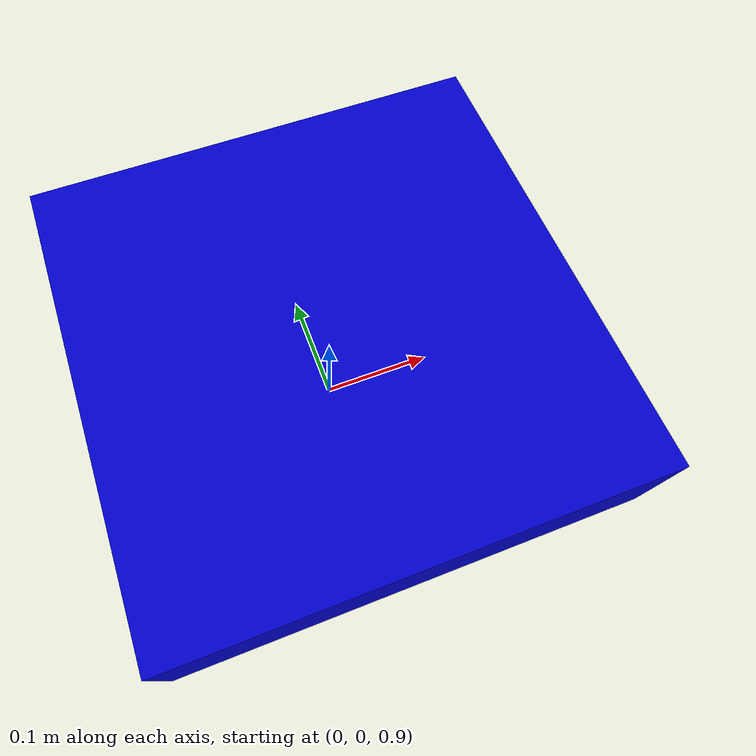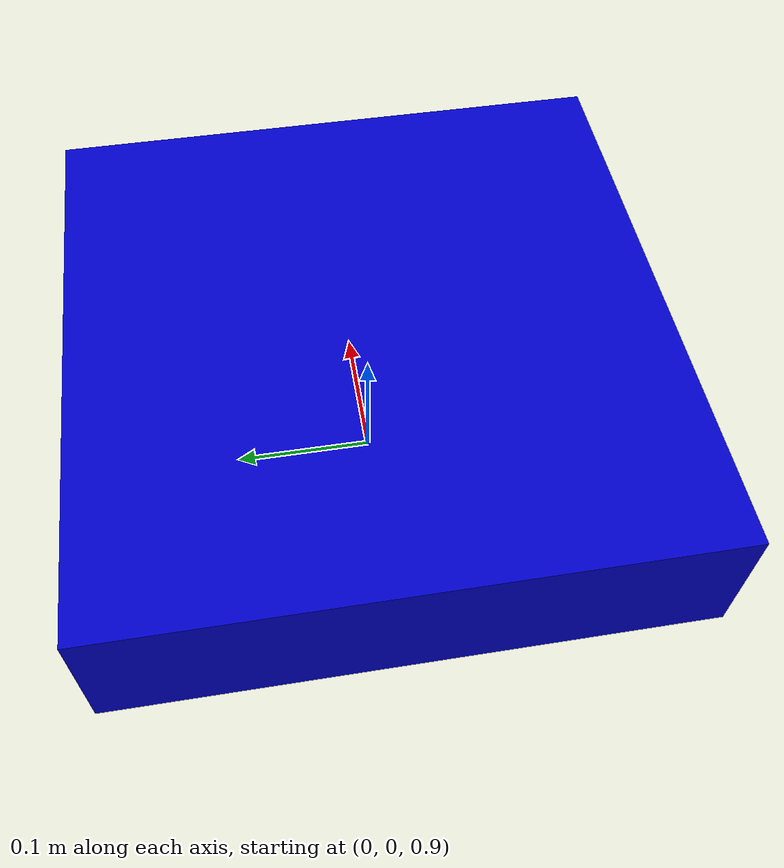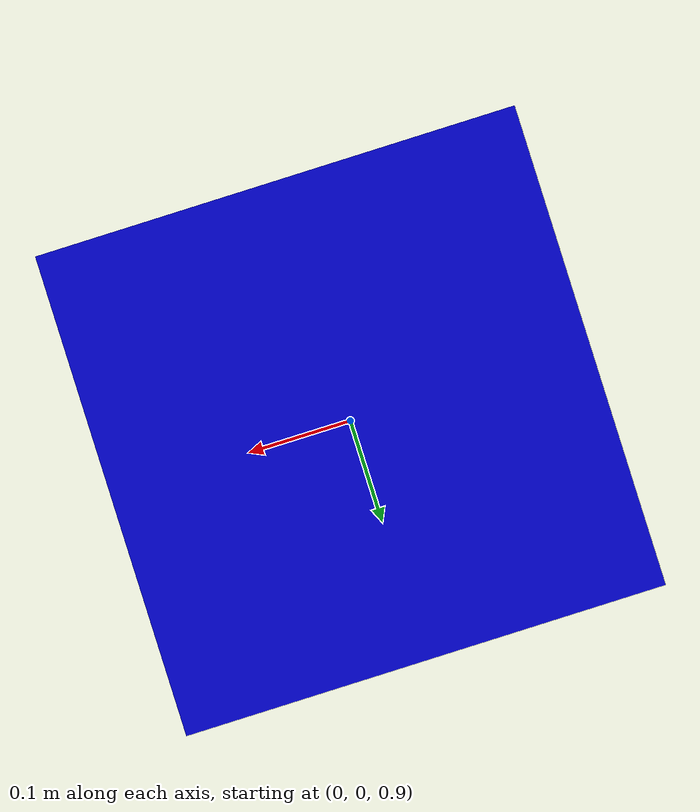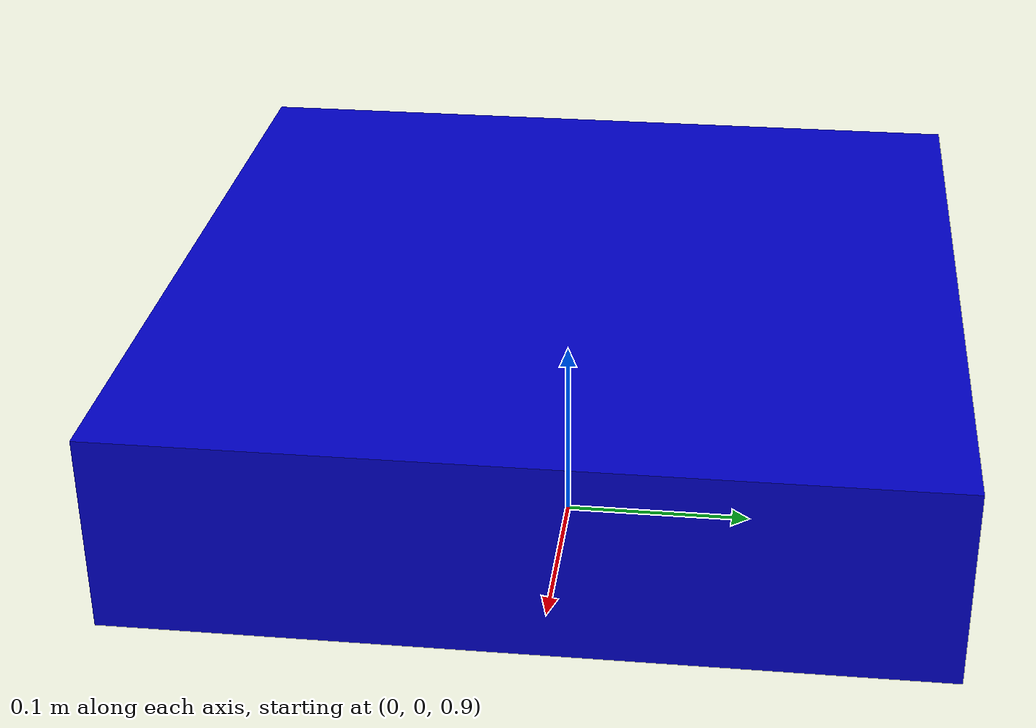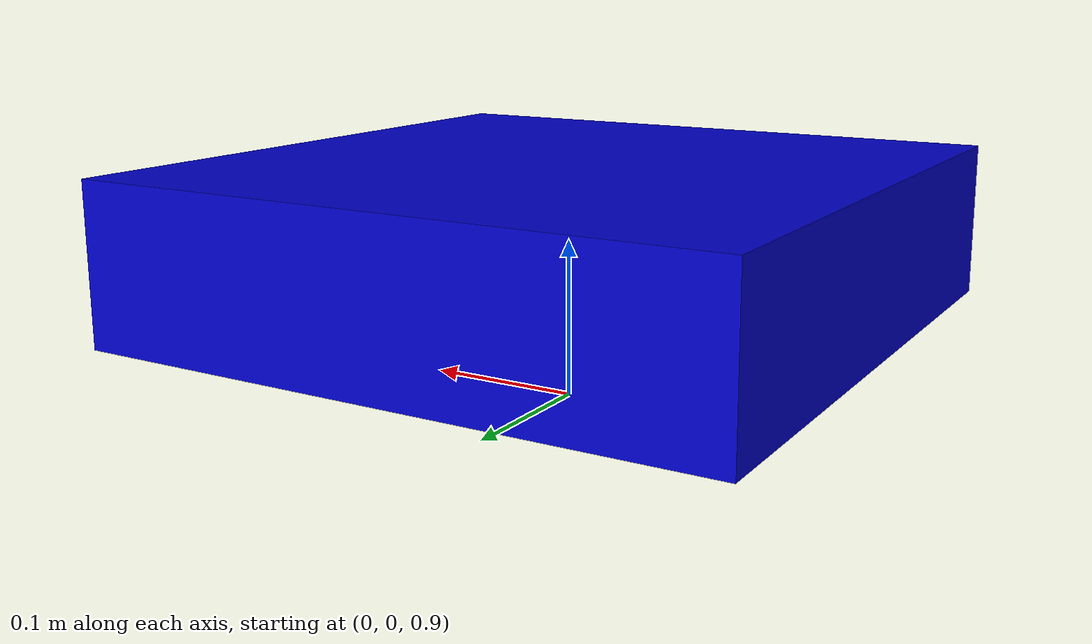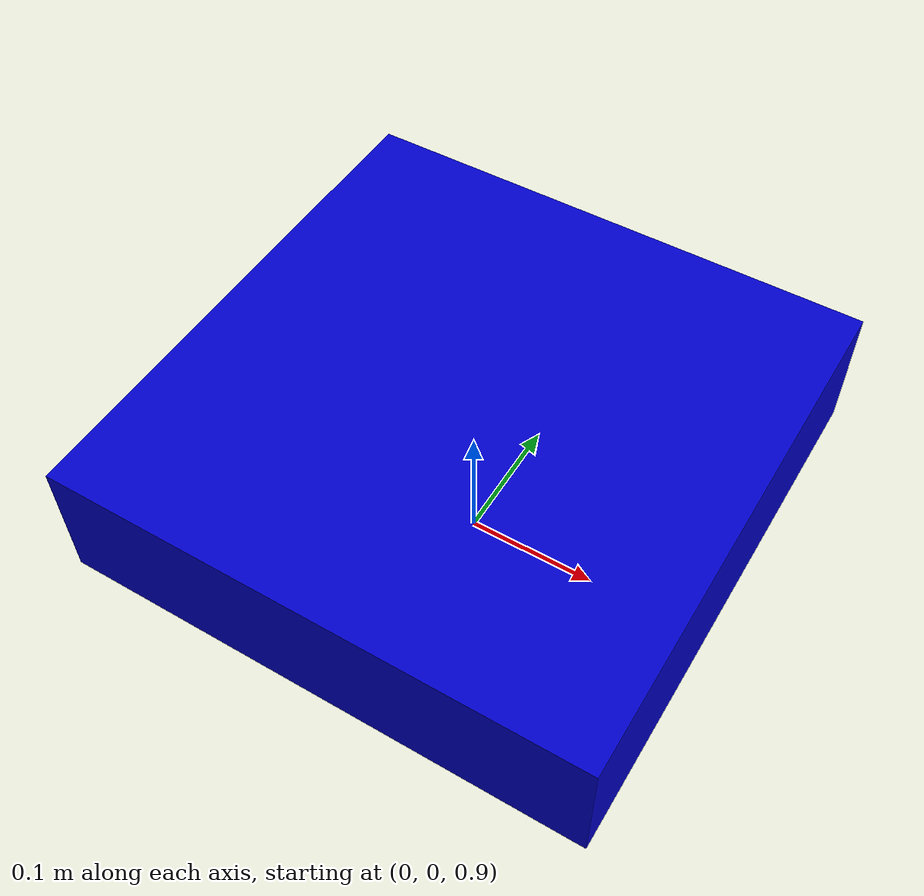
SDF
<?xml version="1.0" ?>
<sdf version="1.8">
  <world name="dve_wind_arena">
    <physics name="1ms" type="ignored">
      <max_step_size>0.001</max_step_size>
      <real_time_factor>1.0</real_time_factor>
    </physics>

    <plugin filename="gz-sim-physics-system" name="gz::sim::systems::Physics" />
    <plugin filename="gz-sim-user-commands-system" name="gz::sim::systems::UserCommands" />
    <plugin filename="gz-sim-scene-broadcaster-system" name="gz::sim::systems::SceneBroadcaster" />
    <plugin filename="gz-sim-imu-system" name="gz::sim::systems::Imu" />

    <!-- Sistemul global de vânt -->
    <plugin filename="gz-sim-wind-effects-system" name="gz::sim::systems::WindEffects">
      <force_approximation_threshold>0.001</force_approximation_threshold>
      <default_wind><linear>4.5 2.0 0.0</linear></default_wind>
    </plugin>

    <light type="directional" name="sun">
      <cast_shadows>true</cast_shadows>
      <pose>0 0 10 0 0 0</pose>
      <diffuse>0.8 0.8 0.8 1</diffuse>
      <specular>0.2 0.2 0.2 1</specular>
    </light>

    <model name="ground_plane">
      <static>true</static>
      <link name="link">
        <collision name="collision">
          <geometry><plane><normal>0 0 1</normal><size>100 100</size></plane></geometry>
        </collision>
        <visual name="visual">
          <geometry><plane><normal>0 0 1</normal><size>100 100</size></plane></geometry>
          <material><ambient>0.2 0.2 0.2 1</ambient><diffuse>0.2 0.2 0.2 1</diffuse></material>
        </visual>
      </link>
    </model>

    <model name="pinn_drone">
      <pose>0 0 1.0 0 0 0</pose>

      <plugin filename="gz-sim-lift-drag-system" name="gz::sim::systems::LiftDrag">
        <a0>0.05</a0><cla>4.75</cla><cda>0.5</cda><alpha_stall>0.33</alpha_stall>
        <cla_stall>-1.5</cla_stall><cda_stall>1.0</cda_stall><cp>0 0 0</cp><area>0.01</area>
        <air_density>1.225</air_density><forward>1 0 0</forward><up>0 0 1</up>
        <link_name>rotor_0</link_name>
      </plugin>
      <plugin filename="gz-sim-lift-drag-system" name="gz::sim::systems::LiftDrag">
        <a0>0.05</a0><cla>4.75</cla><cda>0.5</cda><alpha_stall>0.33</alpha_stall>
        <cla_stall>-1.5</cla_stall><cda_stall>1.0</cda_stall><cp>0 0 0</cp><area>0.01</area>
        <air_density>1.225</air_density><forward>1 0 0</forward><up>0 0 1</up>
        <link_name>rotor_1</link_name>
      </plugin>
      <plugin filename="gz-sim-lift-drag-system" name="gz::sim::systems::LiftDrag">
        <a0>0.05</a0><cla>4.75</cla><cda>0.5</cda><alpha_stall>0.33</alpha_stall>
        <cla_stall>-1.5</cla_stall><cda_stall>1.0</cda_stall><cp>0 0 0</cp><area>0.01</area>
        <air_density>1.225</air_density><forward>1 0 0</forward><up>0 0 1</up>
        <link_name>rotor_2</link_name>
      </plugin>
      <plugin filename="gz-sim-lift-drag-system" name="gz::sim::systems::LiftDrag">
        <a0>0.05</a0><cla>4.75</cla><cda>0.5</cda><alpha_stall>0.33</alpha_stall>
        <cla_stall>-1.5</cla_stall><cda_stall>1.0</cda_stall><cp>0 0 0</cp><area>0.01</area>
        <air_density>1.225</air_density><forward>1 0 0</forward><up>0 0 1</up>
        <link_name>rotor_3</link_name>
      </plugin>

      <!-- Plugin de control pentru traducerea Twist -> Viteze Motoare -->
      <plugin filename="gz-sim-multicopter-control-system" name="gz::sim::systems::MulticopterVelocityControl">
        <robotNamespace>pinn_drone</robotNamespace>
        <commandSubTopic>cmd_vel</commandSubTopic>
        <enableRollPitchTorqueInertiaCompensation>false</enableRollPitchTorqueInertiaCompensation>
        <comLinkName>base_link</comLinkName>

        <velocityGain>1.5 1.5 1.5</velocityGain>
        <attitudeGain>1.5 1.5 0.1</attitudeGain>
        <angularRateGain>0.3 0.3 0.13</angularRateGain>
        <maximumLinearAcceleration>2 2 2</maximumLinearAcceleration>
        <maximumLinearVelocity>5 5 5</maximumLinearVelocity>
        <maximumAngularVelocity>3 3 1.5</maximumAngularVelocity>

       <rotorConfiguration>
          <rotor>
            <id>0</id>
            <jointName>joint_rotor_0</jointName>
            <direction>1</direction>
            <turningDirection>cw</turningDirection>
            <forceConstant>0.00000584</forceConstant>
            <momentConstant>0.016</momentConstant>
            <maxRotVelocity>1200</maxRotVelocity>
            <x>0.2</x><y>0.2</y><z>0.05</z>
          </rotor>
          <rotor>
            <id>1</id>
            <jointName>joint_rotor_1</jointName>
            <direction>1</direction>
            <turningDirection>cw</turningDirection>
            <forceConstant>0.00000584</forceConstant>
            <momentConstant>0.016</momentConstant>
            <maxRotVelocity>1200</maxRotVelocity>
            <x>-0.2</x><y>-0.2</y><z>0.05</z>
          </rotor>
          <rotor>
            <id>2</id>
            <jointName>joint_rotor_2</jointName>
            <direction>-1</direction>
            <turningDirection>ccw</turningDirection>
            <forceConstant>0.00000584</forceConstant>
            <momentConstant>0.016</momentConstant>
            <maxRotVelocity>1200</maxRotVelocity>
            <x>0.2</x><y>-0.2</y><z>0.05</z>
          </rotor>
          <rotor>
            <id>3</id>
            <jointName>joint_rotor_3</jointName>
            <direction>-1</direction>
            <turningDirection>ccw</turningDirection>
            <forceConstant>0.00000584</forceConstant>
            <momentConstant>0.016</momentConstant>
            <maxRotVelocity>1200</maxRotVelocity>
            <x>-0.2</x><y>0.2</y><z>0.05</z>
          </rotor>
        </rotorConfiguration>
      </plugin>

      <!-- Corpul Principal al Dronei -->
      <link name="base_link">
        <enable_wind>true</enable_wind>
        <inertial>
          <mass>1.5</mass>
          <inertia>
            <ixx>0.08</ixx><ixy>0</ixy><ixz>0</ixz>
            <iyy>0.08</iyy><iyz>0</iyz><izz>0.12</izz>
          </inertia>
        </inertial>
        <collision name="collision">
          <geometry><box><size>0.4 0.4 0.1</size></box></geometry>
        </collision>
        <visual name="visual">
          <geometry><box><size>0.4 0.4 0.1</size></box></geometry>
          <material><ambient>0.0 0.0 0.8 1</ambient><diffuse>0.0 0.0 0.8 1</diffuse></material>
        </visual>

        <!-- IMU Sensor — required by physics_bridge.cpp -->
        <sensor name="imu_sensor" type="imu">
          <always_on>1</always_on>
          <update_rate>250</update_rate>
          <imu>
            <angular_velocity>
              <x><noise type="gaussian"><mean>0</mean><stddev>0.0003394</stddev></noise></x>
              <y><noise type="gaussian"><mean>0</mean><stddev>0.0003394</stddev></noise></y>
              <z><noise type="gaussian"><mean>0</mean><stddev>0.0003394</stddev></noise></z>
            </angular_velocity>
            <linear_acceleration>
              <x><noise type="gaussian"><mean>0</mean><stddev>0.017</stddev></noise></x>
              <y><noise type="gaussian"><mean>0</mean><stddev>0.017</stddev></noise></y>
              <z><noise type="gaussian"><mean>0</mean><stddev>0.017</stddev></noise></z>
            </linear_acceleration>
          </imu>
        </sensor>
      </link>

      <!-- Linkuri Elice (Obligatorii pentru a elimina eroarea jointName) -->
      <link name="rotor_0"><pose>0.2 0.2 0.05 0 0 0</pose><inertial><mass>0.01</mass><inertia><ixx>1e-5</ixx><iyy>1e-5</iyy><izz>1e-5</izz></inertia></inertial></link>
      <link name="rotor_1"><pose>-0.2 -0.2 0.05 0 0 0</pose><inertial><mass>0.01</mass><inertia><ixx>1e-5</ixx><iyy>1e-5</iyy><izz>1e-5</izz></inertia></inertial></link>
      <link name="rotor_2"><pose>0.2 -0.2 0.05 0 0 0</pose><inertial><mass>0.01</mass><inertia><ixx>1e-5</ixx><iyy>1e-5</iyy><izz>1e-5</izz></inertia></inertial></link>
      <link name="rotor_3"><pose>-0.2 0.2 0.05 0 0 0</pose><inertial><mass>0.01</mass><inertia><ixx>1e-5</ixx><iyy>1e-5</iyy><izz>1e-5</izz></inertia></inertial></link>

      <!-- Articulații (Joints) pentru Elice (OBLIGATORII) -->
      <joint name="joint_rotor_0" type="revolute"><parent>base_link</parent><child>rotor_0</child><axis><xyz>0 0 1</xyz></axis></joint>
      <joint name="joint_rotor_1" type="revolute"><parent>base_link</parent><child>rotor_1</child><axis><xyz>0 0 1</xyz></axis></joint>
      <joint name="joint_rotor_2" type="revolute"><parent>base_link</parent><child>rotor_2</child><axis><xyz>0 0 1</xyz></axis></joint>
      <joint name="joint_rotor_3" type="revolute"><parent>base_link</parent><child>rotor_3</child><axis><xyz>0 0 1</xyz></axis></joint>

      <plugin filename="gz-sim-multicopter-motor-model-system"
              name="gz::sim::systems::MulticopterMotorModel">
        <robotNamespace>pinn_drone</robotNamespace>
        <jointName>joint_rotor_0</jointName>
        <linkName>rotor_0</linkName>
        <turningDirection>cw</turningDirection>
        <timeConstantUp>0.0125</timeConstantUp>
        <timeConstantDown>0.025</timeConstantDown>
        <maxRotVelocity>1200</maxRotVelocity>
        <motorConstant>0.00000584</motorConstant>
        <momentConstant>0.016</momentConstant>
        <commandSubTopic>gazebo/command/motor_speed</commandSubTopic>
        <actuator_number>0</actuator_number>
        <rotorDragCoefficient>0.000175</rotorDragCoefficient>
        <rollingMomentCoefficient>1e-6</rollingMomentCoefficient>
        <motorSpeedPubTopic>motor_speed/0</motorSpeedPubTopic>
        <rotorVelocitySlowdownSim>10</rotorVelocitySlowdownSim>
        <motorType>velocity</motorType>
      </plugin>

      <plugin filename="gz-sim-multicopter-motor-model-system"
              name="gz::sim::systems::MulticopterMotorModel">
        <robotNamespace>pinn_drone</robotNamespace>
        <jointName>joint_rotor_1</jointName>
        <linkName>rotor_1</linkName>
        <turningDirection>cw</turningDirection>
        <timeConstantUp>0.0125</timeConstantUp>
        <timeConstantDown>0.025</timeConstantDown>
        <maxRotVelocity>1200</maxRotVelocity>
        <motorConstant>0.00000584</motorConstant>
        <momentConstant>0.016</momentConstant>
        <commandSubTopic>gazebo/command/motor_speed</commandSubTopic>
        <actuator_number>1</actuator_number>
        <rotorDragCoefficient>0.000175</rotorDragCoefficient>
        <rollingMomentCoefficient>1e-6</rollingMomentCoefficient>
        <motorSpeedPubTopic>motor_speed/1</motorSpeedPubTopic>
        <rotorVelocitySlowdownSim>10</rotorVelocitySlowdownSim>
        <motorType>velocity</motorType>
      </plugin>

      <plugin filename="gz-sim-multicopter-motor-model-system"
              name="gz::sim::systems::MulticopterMotorModel">
        <robotNamespace>pinn_drone</robotNamespace>
        <jointName>joint_rotor_2</jointName>
        <linkName>rotor_2</linkName>
        <turningDirection>ccw</turningDirection>
        <timeConstantUp>0.0125</timeConstantUp>
        <timeConstantDown>0.025</timeConstantDown>
        <maxRotVelocity>1200</maxRotVelocity>
        <motorConstant>0.00000584</motorConstant>
        <momentConstant>0.016</momentConstant>
        <commandSubTopic>gazebo/command/motor_speed</commandSubTopic>
        <actuator_number>2</actuator_number>
        <rotorDragCoefficient>0.000175</rotorDragCoefficient>
        <rollingMomentCoefficient>1e-6</rollingMomentCoefficient>
        <motorSpeedPubTopic>motor_speed/2</motorSpeedPubTopic>
        <rotorVelocitySlowdownSim>10</rotorVelocitySlowdownSim>
        <motorType>velocity</motorType>
      </plugin>

      <plugin filename="gz-sim-multicopter-motor-model-system"
              name="gz::sim::systems::MulticopterMotorModel">
        <robotNamespace>pinn_drone</robotNamespace>
        <jointName>joint_rotor_3</jointName>
        <linkName>rotor_3</linkName>
        <turningDirection>ccw</turningDirection>
        <timeConstantUp>0.0125</timeConstantUp>
        <timeConstantDown>0.025</timeConstantDown>
        <maxRotVelocity>1200</maxRotVelocity>
        <motorConstant>0.00000584</motorConstant>
        <momentConstant>0.016</momentConstant>
        <commandSubTopic>gazebo/command/motor_speed</commandSubTopic>
        <actuator_number>3</actuator_number>
        <rotorDragCoefficient>0.000175</rotorDragCoefficient>
        <rollingMomentCoefficient>1e-6</rollingMomentCoefficient>
        <motorSpeedPubTopic>motor_speed/3</motorSpeedPubTopic>
        <rotorVelocitySlowdownSim>10</rotorVelocitySlowdownSim>
        <motorType>velocity</motorType>
      </plugin>

    </model>

  </world>
</sdf>
